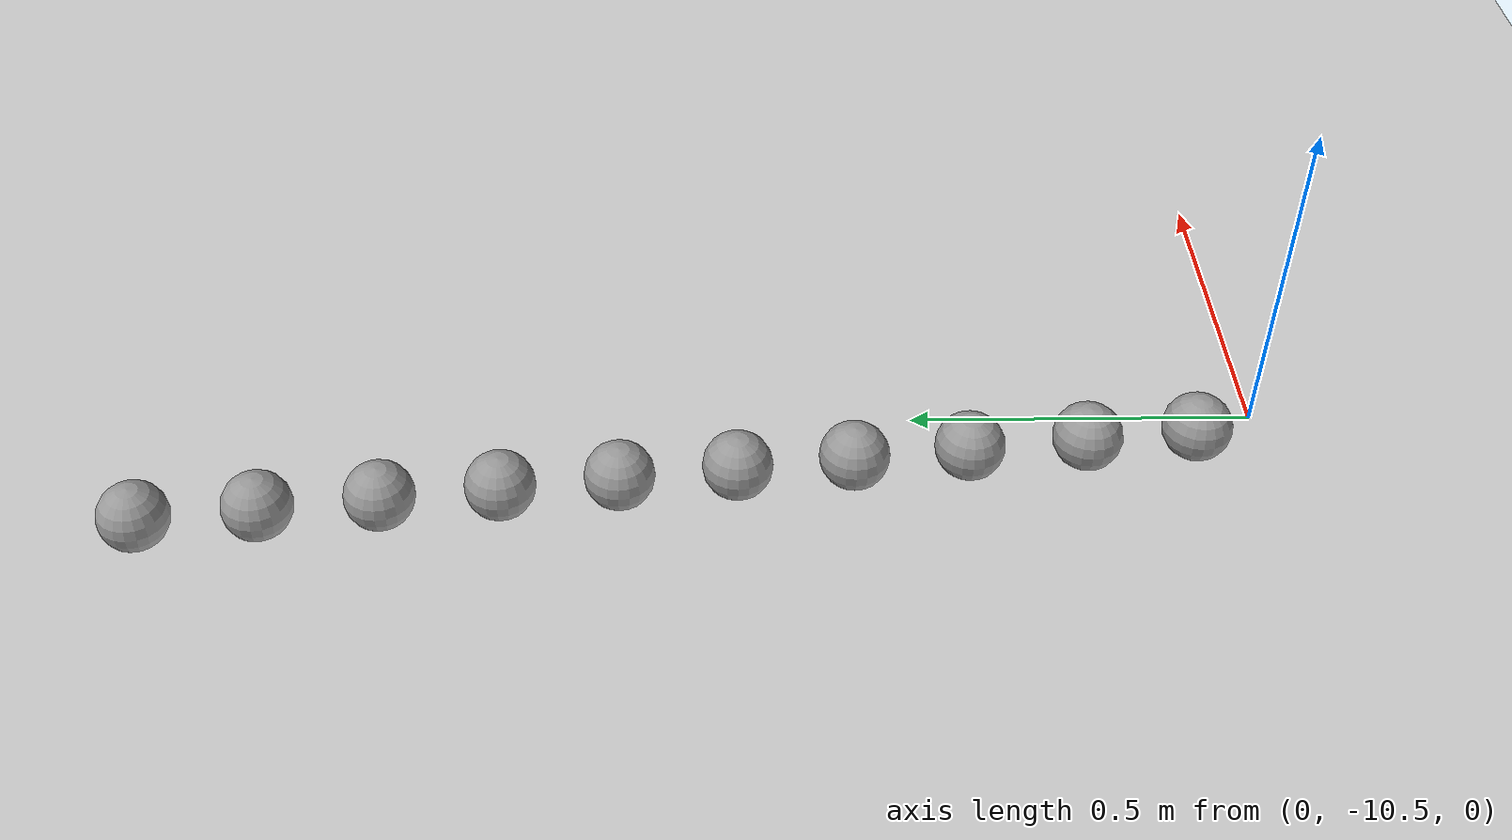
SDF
<sdf version="1.6">
 <world name="default">
  <model name="ground_plane">
   <static>1</static>
   <link name="link">
    <collision name="collision">
     <geometry><plane><normal>0 0 1</normal><size>100 100</size></plane></geometry>
     <surface><friction><ode><mu>100</mu><mu2>50</mu2></ode></friction></surface>
    </collision>
    <visual name="visual">
     <cast_shadows>0</cast_shadows>
     <geometry><plane><normal>0 0 1</normal><size>100 100</size></plane></geometry>
     <material>
      <script><uri>file://media/materials/scripts/gazebo.material</uri><name>Gazebo/Grey</name></script>
     </material>
    </visual>
   </link>
  </model>
  <model name="unit_sphere_0_620">
   <pose>-0.070000 -10.400000 0.050000 0 -0 0</pose>
   <link name="link">
    <inertial>
     <mass>1</mass>
     <inertia><ixx>0.1</ixx><ixy>0</ixy><ixz>0</ixz><iyy>0.1</iyy><iyz>0</iyz><izz>0.1</izz></inertia>
    </inertial>
    <collision name="collision"><geometry><sphere><radius>0.050000</radius></sphere></geometry></collision>
    <visual name="visual">
     <geometry><sphere><radius>0.050000</radius></sphere></geometry>
     <material>
      <script><name>Gazebo/Grey</name><uri>file://media/materials/scripts/gazebo.material</uri></script>
     </material>
    </visual>
   </link>
  </model>
  <model name="unit_sphere_0_621">
   <pose>-0.088000 -10.240000 0.050000 0 -0 0</pose>
   <link name="link">
    <inertial>
     <mass>1</mass>
     <inertia><ixx>0.1</ixx><ixy>0</ixy><ixz>0</ixz><iyy>0.1</iyy><iyz>0</iyz><izz>0.1</izz></inertia>
    </inertial>
    <collision name="collision"><geometry><sphere><radius>0.050000</radius></sphere></geometry></collision>
    <visual name="visual">
     <geometry><sphere><radius>0.050000</radius></sphere></geometry>
     <material>
      <script><name>Gazebo/Grey</name><uri>file://media/materials/scripts/gazebo.material</uri></script>
     </material>
    </visual>
   </link>
  </model>
  <model name="unit_sphere_0_622">
   <pose>-0.106000 -10.070000 0.050000 0 -0 0</pose>
   <link name="link">
    <inertial>
     <mass>1</mass>
     <inertia><ixx>0.1</ixx><ixy>0</ixy><ixz>0</ixz><iyy>0.1</iyy><iyz>0</iyz><izz>0.1</izz></inertia>
    </inertial>
    <collision name="collision"><geometry><sphere><radius>0.050000</radius></sphere></geometry></collision>
    <visual name="visual">
     <geometry><sphere><radius>0.050000</radius></sphere></geometry>
     <material>
      <script><name>Gazebo/Grey</name><uri>file://media/materials/scripts/gazebo.material</uri></script>
     </material>
    </visual>
   </link>
  </model>
  <model name="unit_sphere_0_623">
   <pose>-0.124000 -9.905000 0.050000 0 -0 0</pose>
   <link name="link">
    <inertial>
     <mass>1</mass>
     <inertia><ixx>0.1</ixx><ixy>0</ixy><ixz>0</ixz><iyy>0.1</iyy><iyz>0</iyz><izz>0.1</izz></inertia>
    </inertial>
    <collision name="collision"><geometry><sphere><radius>0.050000</radius></sphere></geometry></collision>
    <visual name="visual">
     <geometry><sphere><radius>0.050000</radius></sphere></geometry>
     <material>
      <script><name>Gazebo/Grey</name><uri>file://media/materials/scripts/gazebo.material</uri></script>
     </material>
    </visual>
   </link>
  </model>
  <model name="unit_sphere_0_624">
   <pose>-0.142000 -9.740000 0.050000 0 -0 0</pose>
   <link name="link">
    <inertial>
     <mass>1</mass>
     <inertia><ixx>0.1</ixx><ixy>0</ixy><ixz>0</ixz><iyy>0.1</iyy><iyz>0</iyz><izz>0.1</izz></inertia>
    </inertial>
    <collision name="collision"><geometry><sphere><radius>0.050000</radius></sphere></geometry></collision>
    <visual name="visual">
     <geometry><sphere><radius>0.050000</radius></sphere></geometry>
     <material>
      <script><name>Gazebo/Grey</name><uri>file://media/materials/scripts/gazebo.material</uri></script>
     </material>
    </visual>
   </link>
  </model>
  <model name="unit_sphere_0_625">
   <pose>-0.160000 -9.575000 0.050000 0 -0 0</pose>
   <link name="link">
    <inertial>
     <mass>1</mass>
     <inertia><ixx>0.1</ixx><ixy>0</ixy><ixz>0</ixz><iyy>0.1</iyy><iyz>0</iyz><izz>0.1</izz></inertia>
    </inertial>
    <collision name="collision"><geometry><sphere><radius>0.050000</radius></sphere></geometry></collision>
    <visual name="visual">
     <geometry><sphere><radius>0.050000</radius></sphere></geometry>
     <material>
      <script><name>Gazebo/Grey</name><uri>file://media/materials/scripts/gazebo.material</uri></script>
     </material>
    </visual>
   </link>
  </model>
  <model name="unit_sphere_0_626">
   <pose>-0.178000 -9.410000 0.050000 0 -0 0</pose>
   <link name="link">
    <inertial>
     <mass>1</mass>
     <inertia><ixx>0.1</ixx><ixy>0</ixy><ixz>0</ixz><iyy>0.1</iyy><iyz>0</iyz><izz>0.1</izz></inertia>
    </inertial>
    <collision name="collision"><geometry><sphere><radius>0.050000</radius></sphere></geometry></collision>
    <visual name="visual">
     <geometry><sphere><radius>0.050000</radius></sphere></geometry>
     <material>
      <script><name>Gazebo/Grey</name><uri>file://media/materials/scripts/gazebo.material</uri></script>
     </material>
    </visual>
   </link>
  </model>
  <model name="unit_sphere_0_627">
   <pose>-0.196000 -9.245000 0.050000 0 -0 0</pose>
   <link name="link">
    <inertial>
     <mass>1</mass>
     <inertia><ixx>0.1</ixx><ixy>0</ixy><ixz>0</ixz><iyy>0.1</iyy><iyz>0</iyz><izz>0.1</izz></inertia>
    </inertial>
    <collision name="collision"><geometry><sphere><radius>0.050000</radius></sphere></geometry></collision>
    <visual name="visual">
     <geometry><sphere><radius>0.050000</radius></sphere></geometry>
     <material>
      <script><name>Gazebo/Grey</name><uri>file://media/materials/scripts/gazebo.material</uri></script>
     </material>
    </visual>
   </link>
  </model>
  <model name="unit_sphere_0_628">
   <pose>-0.214000 -9.080000 0.050000 0 -0 0</pose>
   <link name="link">
    <inertial>
     <mass>1</mass>
     <inertia><ixx>0.1</ixx><ixy>0</ixy><ixz>0</ixz><iyy>0.1</iyy><iyz>0</iyz><izz>0.1</izz></inertia>
    </inertial>
    <collision name="collision"><geometry><sphere><radius>0.050000</radius></sphere></geometry></collision>
    <visual name="visual">
     <geometry><sphere><radius>0.050000</radius></sphere></geometry>
     <material>
      <script><name>Gazebo/Grey</name><uri>file://media/materials/scripts/gazebo.material</uri></script>
     </material>
    </visual>
   </link>
  </model>
  <model name="unit_sphere_0_629">
   <pose>-0.232000 -8.915000 0.050000 0 -0 0</pose>
   <link name="link">
    <inertial>
     <mass>1</mass>
     <inertia><ixx>0.1</ixx><ixy>0</ixy><ixz>0</ixz><iyy>0.1</iyy><iyz>0</iyz><izz>0.1</izz></inertia>
    </inertial>
    <collision name="collision"><geometry><sphere><radius>0.050000</radius></sphere></geometry></collision>
    <visual name="visual">
     <geometry><sphere><radius>0.050000</radius></sphere></geometry>
     <material>
      <script><name>Gazebo/Grey</name><uri>file://media/materials/scripts/gazebo.material</uri></script>
     </material>
    </visual>
   </link>
  </model>
 </world>
</sdf>
